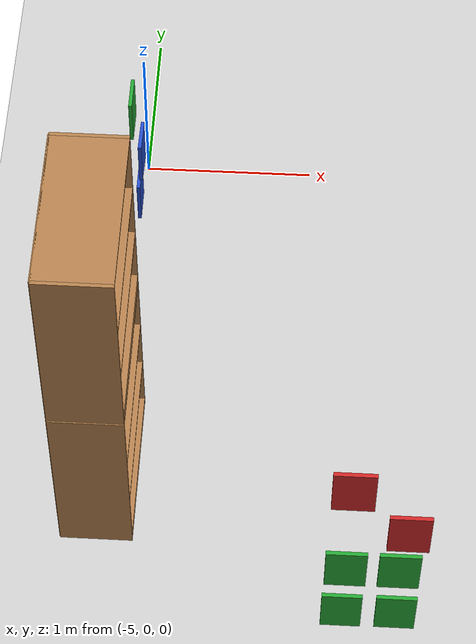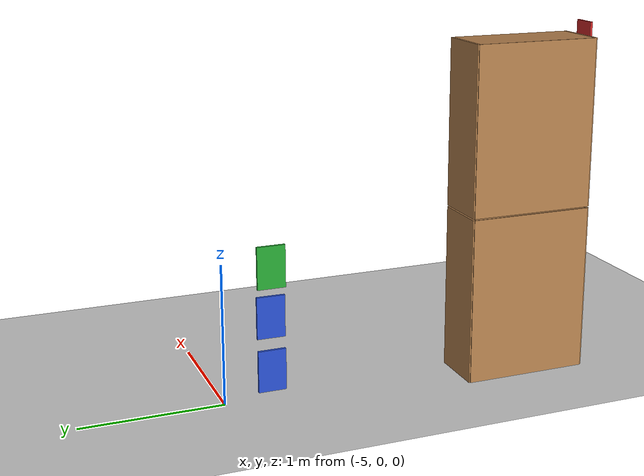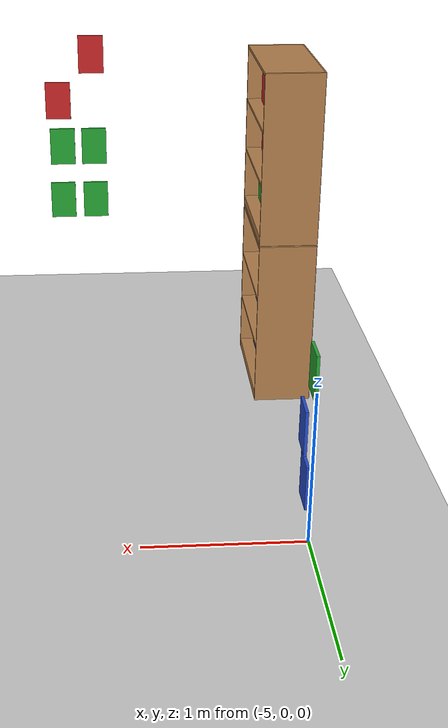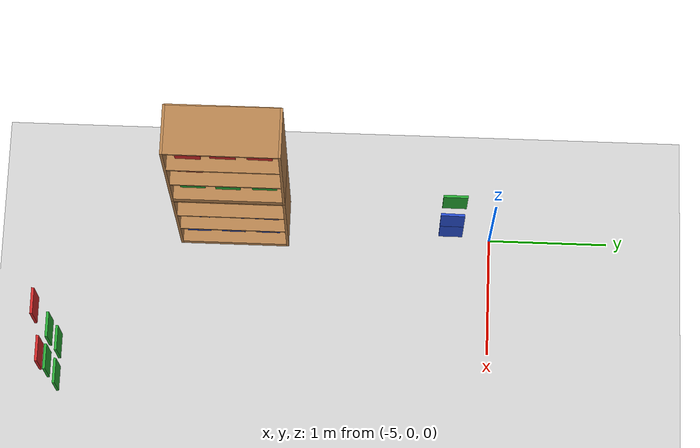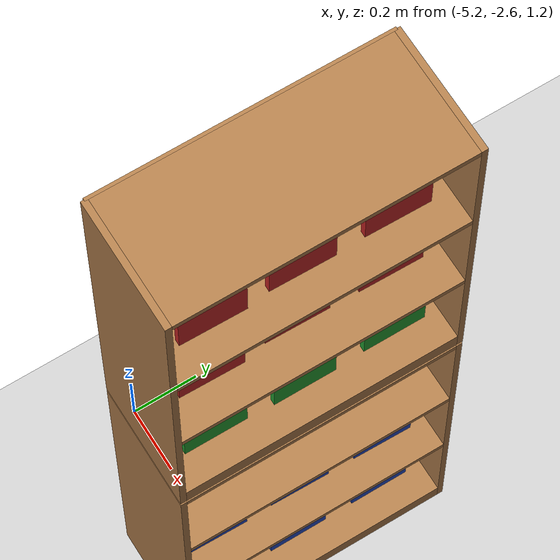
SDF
<sdf version="1.6">
 <world name="default">
  <model name="ground_plane">
   <static>1</static>
   <link name="link">
    <collision name="collision">
     <geometry><plane><normal>0 0 1</normal><size>100 100</size></plane></geometry>
     <surface><friction><ode><mu>100</mu><mu2>50</mu2></ode></friction></surface>
    </collision>
    <visual name="visual">
     <cast_shadows>0</cast_shadows>
     <geometry><plane><normal>0 0 1</normal><size>100 100</size></plane></geometry>
     <material>
      <script><uri>file://media/materials/scripts/gazebo.material</uri><name>Gazebo/Grey</name></script>
     </material>
    </visual>
   </link>
  </model>
  <model name="bookshelf_0_clone_0_clone_1">
   <static>1</static>
   <link name="link">
    <inertial><mass>1</mass></inertial>
    <collision name="back">
     <pose>0 0.005 0.6 0 -0 0</pose>
     <geometry><box><size>0.9 0.01 1.2</size></box></geometry>
    </collision>
    <visual name="visual1">
     <pose>0 0.005 0.6 0 -0 0</pose>
     <geometry><box><size>0.9 0.01 1.2</size></box></geometry>
     <material>
      <script><uri>file://media/materials/scripts/gazebo.material</uri><name>Gazebo/Wood</name></script>
     </material>
    </visual>
    <collision name="left_side">
     <pose>0.45 -0.195 0.6 0 -0 0</pose>
     <geometry><box><size>0.02 0.4 1.2</size></box></geometry>
    </collision>
    <visual name="visual2">
     <pose>0.45 -0.195 0.6 0 -0 0</pose>
     <geometry><box><size>0.02 0.4 1.2</size></box></geometry>
     <material>
      <script><uri>file://media/materials/scripts/gazebo.material</uri><name>Gazebo/Wood</name></script>
     </material>
    </visual>
    <collision name="right_side">
     <pose>-0.45 -0.195 0.6 0 -0 0</pose>
     <geometry><box><size>0.02 0.4 1.2</size></box></geometry>
    </collision>
    <visual name="visual3">
     <pose>-0.45 -0.195 0.6 0 -0 0</pose>
     <geometry><box><size>0.02 0.4 1.2</size></box></geometry>
     <material>
      <script><uri>file://media/materials/scripts/gazebo.material</uri><name>Gazebo/Wood</name></script>
     </material>
    </visual>
    <collision name="bottom">
     <pose>0 -0.195 0.03 0 -0 0</pose>
     <geometry><box><size>0.88 0.4 0.06</size></box></geometry>
    </collision>
    <visual name="visual4">
     <pose>0 -0.195 0.03 0 -0 0</pose>
     <geometry><box><size>0.88 0.4 0.06</size></box></geometry>
     <material>
      <script><uri>file://media/materials/scripts/gazebo.material</uri><name>Gazebo/Wood</name></script>
     </material>
    </visual>
    <collision name="top">
     <pose>0 -0.195 1.19 0 -0 0</pose>
     <geometry><box><size>0.88 0.4 0.02</size></box></geometry>
    </collision>
    <visual name="visual5">
     <pose>0 -0.195 1.19 0 -0 0</pose>
     <geometry><box><size>0.88 0.4 0.02</size></box></geometry>
     <material>
      <script><uri>file://media/materials/scripts/gazebo.material</uri><name>Gazebo/Wood</name></script>
     </material>
    </visual>
    <collision name="low_shelf">
     <pose>0 -0.195 0.43 0 -0 0</pose>
     <geometry><box><size>0.88 0.4 0.02</size></box></geometry>
    </collision>
    <visual name="visual6">
     <pose>0 -0.195 0.43 0 -0 0</pose>
     <geometry><box><size>0.88 0.4 0.02</size></box></geometry>
     <material>
      <script><uri>file://media/materials/scripts/gazebo.material</uri><name>Gazebo/Wood</name></script>
     </material>
    </visual>
    <collision name="high_shelf">
     <pose>0 -0.195 0.8 0 -0 0</pose>
     <geometry><box><size>0.88 0.4 0.02</size></box></geometry>
    </collision>
    <visual name="visual7">
     <pose>0 -0.195 0.8 0 -0 0</pose>
     <geometry><box><size>0.88 0.4 0.02</size></box></geometry>
     <material>
      <script><uri>file://media/materials/scripts/gazebo.material</uri><name>Gazebo/Wood</name></script>
     </material>
    </visual>
   </link>
   <pose>-5.28921 -2.17241 0 0 -0 1.5697</pose>
  </model>
  <model name="bookshelf_0_clone_0_clone_1_clone_0_clone_0">
   <static>1</static>
   <link name="link">
    <inertial><mass>1</mass></inertial>
    <collision name="back">
     <pose>0 0.005 0.6 0 -0 0</pose>
     <geometry><box><size>0.9 0.01 1.2</size></box></geometry>
    </collision>
    <visual name="visual1">
     <pose>0 0.005 0.6 0 -0 0</pose>
     <geometry><box><size>0.9 0.01 1.2</size></box></geometry>
     <material>
      <script><uri>file://media/materials/scripts/gazebo.material</uri><name>Gazebo/Wood</name></script>
     </material>
    </visual>
    <collision name="left_side">
     <pose>0.45 -0.195 0.6 0 -0 0</pose>
     <geometry><box><size>0.02 0.4 1.2</size></box></geometry>
    </collision>
    <visual name="visual2">
     <pose>0.45 -0.195 0.6 0 -0 0</pose>
     <geometry><box><size>0.02 0.4 1.2</size></box></geometry>
     <material>
      <script><uri>file://media/materials/scripts/gazebo.material</uri><name>Gazebo/Wood</name></script>
     </material>
    </visual>
    <collision name="right_side">
     <pose>-0.45 -0.195 0.6 0 -0 0</pose>
     <geometry><box><size>0.02 0.4 1.2</size></box></geometry>
    </collision>
    <visual name="visual3">
     <pose>-0.45 -0.195 0.6 0 -0 0</pose>
     <geometry><box><size>0.02 0.4 1.2</size></box></geometry>
     <material>
      <script><uri>file://media/materials/scripts/gazebo.material</uri><name>Gazebo/Wood</name></script>
     </material>
    </visual>
    <collision name="bottom">
     <pose>0 -0.195 0.03 0 -0 0</pose>
     <geometry><box><size>0.88 0.4 0.06</size></box></geometry>
    </collision>
    <visual name="visual4">
     <pose>0 -0.195 0.03 0 -0 0</pose>
     <geometry><box><size>0.88 0.4 0.06</size></box></geometry>
     <material>
      <script><uri>file://media/materials/scripts/gazebo.material</uri><name>Gazebo/Wood</name></script>
     </material>
    </visual>
    <collision name="top">
     <pose>0 -0.195 1.19 0 -0 0</pose>
     <geometry><box><size>0.88 0.4 0.02</size></box></geometry>
    </collision>
    <visual name="visual5">
     <pose>0 -0.195 1.19 0 -0 0</pose>
     <geometry><box><size>0.88 0.4 0.02</size></box></geometry>
     <material>
      <script><uri>file://media/materials/scripts/gazebo.material</uri><name>Gazebo/Wood</name></script>
     </material>
    </visual>
    <collision name="low_shelf">
     <pose>0 -0.195 0.43 0 -0 0</pose>
     <geometry><box><size>0.88 0.4 0.02</size></box></geometry>
    </collision>
    <visual name="visual6">
     <pose>0 -0.195 0.43 0 -0 0</pose>
     <geometry><box><size>0.88 0.4 0.02</size></box></geometry>
     <material>
      <script><uri>file://media/materials/scripts/gazebo.material</uri><name>Gazebo/Wood</name></script>
     </material>
    </visual>
    <collision name="high_shelf">
     <pose>0 -0.195 0.8 0 -0 0</pose>
     <geometry><box><size>0.88 0.4 0.02</size></box></geometry>
    </collision>
    <visual name="visual7">
     <pose>0 -0.195 0.8 0 -0 0</pose>
     <geometry><box><size>0.88 0.4 0.02</size></box></geometry>
     <material>
      <script><uri>file://media/materials/scripts/gazebo.material</uri><name>Gazebo/Wood</name></script>
     </material>
    </visual>
   </link>
   <pose>-5.28921 -2.17241 1.21067 0 -0 1.5697</pose>
  </model>
  <model name="bluecube_0_clone_clone_9_clone_11_clone_clone_9">
   <static>1</static>
   <link name="link">
    <pose>0 0 0.21 0 -0 0</pose>
    <collision name="collision"><geometry><box><size>0.2 0.02 0.3</size></box></geometry></collision>
    <visual name="visual">
     <geometry><box><size>0.2 0.02 0.3</size></box></geometry>
     <material>
      <script><uri>file://media/materials/scripts/gazebo.material</uri><name>Gazebo/Blue</name></script>
     </material>
    </visual>
   </link>
   <pose>-5.0005 -2.4781 0 0 -0 1.57146</pose>
  </model>
  <model name="bluecube_0_clone_clone_9_clone_11_clone_clone_10">
   <static>1</static>
   <link name="link">
    <pose>0 0 0.21 0 -0 0</pose>
    <collision name="collision"><geometry><box><size>0.2 0.02 0.3</size></box></geometry></collision>
    <visual name="visual">
     <geometry><box><size>0.2 0.02 0.3</size></box></geometry>
     <material>
      <script><uri>file://media/materials/scripts/gazebo.material</uri><name>Gazebo/Blue</name></script>
     </material>
    </visual>
   </link>
   <pose>-5.00143 -2.18751 0 0 -0 1.57146</pose>
  </model>
  <model name="bluecube_0_clone_clone_9_clone_11_clone_clone_11">
   <static>1</static>
   <link name="link">
    <pose>0 0 0.21 0 -0 0</pose>
    <collision name="collision"><geometry><box><size>0.2 0.02 0.3</size></box></geometry></collision>
    <visual name="visual">
     <geometry><box><size>0.2 0.02 0.3</size></box></geometry>
     <material>
      <script><uri>file://media/materials/scripts/gazebo.material</uri><name>Gazebo/Blue</name></script>
     </material>
    </visual>
   </link>
   <pose>-5.0024 -1.89029 0 0 -0 1.57146</pose>
  </model>
  <model name="bluecube_0_clone_clone_9_clone_11_clone_clone_12">
   <static>1</static>
   <link name="link">
    <pose>0 0 0.21 0 -0 0</pose>
    <collision name="collision"><geometry><box><size>0.2 0.02 0.3</size></box></geometry></collision>
    <visual name="visual">
     <geometry><box><size>0.2 0.02 0.3</size></box></geometry>
     <material>
      <script><uri>file://media/materials/scripts/gazebo.material</uri><name>Gazebo/Blue</name></script>
     </material>
    </visual>
   </link>
   <pose>-5.02173 -0.335053 0 0 -0 1.57146</pose>
  </model>
  <model name="bluecube_0_clone_clone_10_clone_clone_21_clone_clone_10">
   <static>1</static>
   <link name="link">
    <pose>0 0 0.21 0 -0 0</pose>
    <collision name="collision"><geometry><box><size>0.2 0.02 0.3</size></box></geometry></collision>
    <visual name="visual">
     <geometry><box><size>0.2 0.02 0.3</size></box></geometry>
     <material>
      <script><uri>file://media/materials/scripts/gazebo.material</uri><name>Gazebo/Blue</name></script>
     </material>
    </visual>
   </link>
   <pose>-5.00823 -2.46789 0.38097 0 -0 1.5507</pose>
  </model>
  <model name="bluecube_0_clone_clone_10_clone_clone_21_clone_clone_11">
   <static>1</static>
   <link name="link">
    <pose>0 0 0.21 0 -0 0</pose>
    <collision name="collision"><geometry><box><size>0.2 0.02 0.3</size></box></geometry></collision>
    <visual name="visual">
     <geometry><box><size>0.2 0.02 0.3</size></box></geometry>
     <material>
      <script><uri>file://media/materials/scripts/gazebo.material</uri><name>Gazebo/Blue</name></script>
     </material>
    </visual>
   </link>
   <pose>-5.00876 -2.17917 0.38097 0 -0 1.5507</pose>
  </model>
  <model name="bluecube_0_clone_clone_10_clone_clone_21_clone_clone_12">
   <static>1</static>
   <link name="link">
    <pose>0 0 0.21 0 -0 0</pose>
    <collision name="collision"><geometry><box><size>0.2 0.02 0.3</size></box></geometry></collision>
    <visual name="visual">
     <geometry><box><size>0.2 0.02 0.3</size></box></geometry>
     <material>
      <script><uri>file://media/materials/scripts/gazebo.material</uri><name>Gazebo/Blue</name></script>
     </material>
    </visual>
   </link>
   <pose>-5.00479 -1.88869 0.38097 0 -0 1.5507</pose>
  </model>
  <model name="bluecube_0_clone_clone_10_clone_clone_21_clone_clone_13">
   <static>1</static>
   <link name="link">
    <pose>0 0 0.21 0 -0 0</pose>
    <collision name="collision"><geometry><box><size>0.2 0.02 0.3</size></box></geometry></collision>
    <visual name="visual">
     <geometry><box><size>0.2 0.02 0.3</size></box></geometry>
     <material>
      <script><uri>file://media/materials/scripts/gazebo.material</uri><name>Gazebo/Blue</name></script>
     </material>
    </visual>
   </link>
   <pose>-4.99981 -0.338779 0.38097 0 -0 1.5507</pose>
  </model>
  <model name="greencube_clone_clone_20">
   <static>1</static>
   <link name="link">
    <pose>0 0 0.21 0 -0 0</pose>
    <collision name="collision"><geometry><box><size>0.2 0.02 0.3</size></box></geometry></collision>
    <visual name="visual">
     <geometry><box><size>0.2 0.02 0.3</size></box></geometry>
     <material>
      <script><uri>file://media/materials/scripts/gazebo.material</uri><name>Gazebo/Green</name></script>
     </material>
    </visual>
   </link>
   <pose>-3.48798 -3.49201 0.751098 0 -0 0</pose>
  </model>
  <model name="greencube_clone_clone_21">
   <static>1</static>
   <link name="link">
    <pose>0 0 0.21 0 -0 0</pose>
    <collision name="collision"><geometry><box><size>0.2 0.02 0.3</size></box></geometry></collision>
    <visual name="visual">
     <geometry><box><size>0.2 0.02 0.3</size></box></geometry>
     <material>
      <script><uri>file://media/materials/scripts/gazebo.material</uri><name>Gazebo/Green</name></script>
     </material>
    </visual>
   </link>
   <pose>-3.75667 -3.49433 0.751098 0 -0 0</pose>
  </model>
  <model name="greencube_clone_clone_22_clone_clone_10">
   <static>1</static>
   <link name="link">
    <pose>0 0 0.21 0 -0 0</pose>
    <collision name="collision"><geometry><box><size>0.2 0.02 0.3</size></box></geometry></collision>
    <visual name="visual">
     <geometry><box><size>0.2 0.02 0.3</size></box></geometry>
     <material>
      <script><uri>file://media/materials/scripts/gazebo.material</uri><name>Gazebo/Green</name></script>
     </material>
    </visual>
   </link>
   <pose>-5.02813 -2.46012 0.751098 0 -0 1.56837</pose>
  </model>
  <model name="greencube_clone_clone_22_clone_clone_11">
   <static>1</static>
   <link name="link">
    <pose>0 0 0.21 0 -0 0</pose>
    <collision name="collision"><geometry><box><size>0.2 0.02 0.3</size></box></geometry></collision>
    <visual name="visual">
     <geometry><box><size>0.2 0.02 0.3</size></box></geometry>
     <material>
      <script><uri>file://media/materials/scripts/gazebo.material</uri><name>Gazebo/Green</name></script>
     </material>
    </visual>
   </link>
   <pose>-5.03599 -2.17773 0.751098 0 -0 1.56837</pose>
  </model>
  <model name="greencube_clone_clone_22_clone_clone_12">
   <static>1</static>
   <link name="link">
    <pose>0 0 0.21 0 -0 0</pose>
    <collision name="collision"><geometry><box><size>0.2 0.02 0.3</size></box></geometry></collision>
    <visual name="visual">
     <geometry><box><size>0.2 0.02 0.3</size></box></geometry>
     <material>
      <script><uri>file://media/materials/scripts/gazebo.material</uri><name>Gazebo/Green</name></script>
     </material>
    </visual>
   </link>
   <pose>-5.03439 -1.88241 0.751098 0 -0 1.56837</pose>
  </model>
  <model name="greencube_clone_clone_22_clone_clone_13">
   <static>1</static>
   <link name="link">
    <pose>0 0 0.21 0 -0 0</pose>
    <collision name="collision"><geometry><box><size>0.2 0.02 0.3</size></box></geometry></collision>
    <visual name="visual">
     <geometry><box><size>0.2 0.02 0.3</size></box></geometry>
     <material>
      <script><uri>file://media/materials/scripts/gazebo.material</uri><name>Gazebo/Green</name></script>
     </material>
    </visual>
   </link>
   <pose>-5.04419 -0.332653 0.751098 0 -0 1.56837</pose>
  </model>
  <model name="greencube_clone_clone_0_clone_clone_clone_20">
   <static>1</static>
   <link name="link">
    <pose>0 0 0.21 0 -0 0</pose>
    <collision name="collision"><geometry><box><size>0.2 0.02 0.3</size></box></geometry></collision>
    <visual name="visual">
     <geometry><box><size>0.2 0.02 0.3</size></box></geometry>
     <material>
      <script><uri>file://media/materials/scripts/gazebo.material</uri><name>Gazebo/Green</name></script>
     </material>
    </visual>
   </link>
   <pose>-3.49563 -3.50923 1.20525 0 -0 0</pose>
  </model>
  <model name="greencube_clone_clone_0_clone_clone_clone_21">
   <static>1</static>
   <link name="link">
    <pose>0 0 0.21 0 -0 0</pose>
    <collision name="collision"><geometry><box><size>0.2 0.02 0.3</size></box></geometry></collision>
    <visual name="visual">
     <geometry><box><size>0.2 0.02 0.3</size></box></geometry>
     <material>
      <script><uri>file://media/materials/scripts/gazebo.material</uri><name>Gazebo/Green</name></script>
     </material>
    </visual>
   </link>
   <pose>-3.75223 -3.51006 1.20525 0 -0 0</pose>
  </model>
  <model name="greencube_clone_clone_22_clone_clone_10_clone_clone">
   <static>1</static>
   <link name="link">
    <pose>0 0 0.21 0 -0 0</pose>
    <collision name="collision"><geometry><box><size>0.2 0.02 0.3</size></box></geometry></collision>
    <visual name="visual">
     <geometry><box><size>0.2 0.02 0.3</size></box></geometry>
     <material>
      <script><uri>file://media/materials/scripts/gazebo.material</uri><name>Gazebo/Green</name></script>
     </material>
    </visual>
   </link>
   <pose>-4.99763 -2.17381 1.21098 0 -0 1.56837</pose>
  </model>
  <model name="greencube_clone_clone_22_clone_clone_10_clone_clone_clone">
   <static>1</static>
   <link name="link">
    <pose>0 0 0.21 0 -0 0</pose>
    <collision name="collision"><geometry><box><size>0.2 0.02 0.3</size></box></geometry></collision>
    <visual name="visual">
     <geometry><box><size>0.2 0.02 0.3</size></box></geometry>
     <material>
      <script><uri>file://media/materials/scripts/gazebo.material</uri><name>Gazebo/Green</name></script>
     </material>
    </visual>
   </link>
   <pose>-5.00313 -2.45708 1.21098 0 -0 1.56837</pose>
  </model>
  <model name="greencube_clone_clone_22_clone_clone_10_clone_clone_clone_0">
   <static>1</static>
   <link name="link">
    <pose>0 0 0.21 0 -0 0</pose>
    <collision name="collision"><geometry><box><size>0.2 0.02 0.3</size></box></geometry></collision>
    <visual name="visual">
     <geometry><box><size>0.2 0.02 0.3</size></box></geometry>
     <material>
      <script><uri>file://media/materials/scripts/gazebo.material</uri><name>Gazebo/Green</name></script>
     </material>
    </visual>
   </link>
   <pose>-5.00224 -1.87916 1.21098 0 -0 1.56837</pose>
  </model>
  <model name="redcube_clone_clone_20">
   <static>1</static>
   <link name="link">
    <pose>0 0 0.21 0 -0 0</pose>
    <collision name="collision"><geometry><box><size>0.2 0.02 0.3</size></box></geometry></collision>
    <visual name="visual">
     <geometry><box><size>0.2 0.02 0.3</size></box></geometry>
     <material>
      <script><uri>file://media/materials/scripts/gazebo.material</uri><name>Gazebo/Red</name></script>
     </material>
    </visual>
   </link>
   <pose>-3.47029 -3.52023 1.58534 0 -0 0</pose>
  </model>
  <model name="redcube_clone_clone_22_clone">
   <static>1</static>
   <link name="link">
    <pose>0 0 0.21 0 -0 0</pose>
    <collision name="collision"><geometry><box><size>0.2 0.02 0.3</size></box></geometry></collision>
    <visual name="visual">
     <geometry><box><size>0.2 0.02 0.3</size></box></geometry>
     <material>
      <script><uri>file://media/materials/scripts/gazebo.material</uri><name>Gazebo/Red</name></script>
     </material>
    </visual>
   </link>
   <pose>-5.02728 -2.18168 1.58534 0 -0 1.55372</pose>
  </model>
  <model name="redcube_clone_clone_22_clone_clone">
   <static>1</static>
   <link name="link">
    <pose>0 0 0.21 0 -0 0</pose>
    <collision name="collision"><geometry><box><size>0.2 0.02 0.3</size></box></geometry></collision>
    <visual name="visual">
     <geometry><box><size>0.2 0.02 0.3</size></box></geometry>
     <material>
      <script><uri>file://media/materials/scripts/gazebo.material</uri><name>Gazebo/Red</name></script>
     </material>
    </visual>
   </link>
   <pose>-5.01335 -2.45368 1.58534 0 -0 1.55372</pose>
  </model>
  <model name="redcube_clone_clone_22_clone_clone_0">
   <static>1</static>
   <link name="link">
    <pose>0 0 0.21 0 -0 0</pose>
    <collision name="collision"><geometry><box><size>0.2 0.02 0.3</size></box></geometry></collision>
    <visual name="visual">
     <geometry><box><size>0.2 0.02 0.3</size></box></geometry>
     <material>
      <script><uri>file://media/materials/scripts/gazebo.material</uri><name>Gazebo/Red</name></script>
     </material>
    </visual>
   </link>
   <pose>-5.02209 -1.89104 1.58534 0 -0 1.55372</pose>
  </model>
  <model name="redcube_clone_clone_22_clone_clone_22_clone_clone_10">
   <static>1</static>
   <link name="link">
    <pose>0 0 0.21 0 -0 0</pose>
    <collision name="collision"><geometry><box><size>0.2 0.02 0.3</size></box></geometry></collision>
    <visual name="visual">
     <geometry><box><size>0.2 0.02 0.3</size></box></geometry>
     <material>
      <script><uri>file://media/materials/scripts/gazebo.material</uri><name>Gazebo/Red</name></script>
     </material>
    </visual>
   </link>
   <pose>-5.00031 -2.44874 1.95914 0 -0 1.55372</pose>
  </model>
  <model name="redcube_clone_clone_22_clone_clone_22_clone_clone_11">
   <static>1</static>
   <link name="link">
    <pose>0 0 0.21 0 -0 0</pose>
    <collision name="collision"><geometry><box><size>0.2 0.02 0.3</size></box></geometry></collision>
    <visual name="visual">
     <geometry><box><size>0.2 0.02 0.3</size></box></geometry>
     <material>
      <script><uri>file://media/materials/scripts/gazebo.material</uri><name>Gazebo/Red</name></script>
     </material>
    </visual>
   </link>
   <pose>-5.00807 -2.17908 1.95914 0 -0 1.55372</pose>
  </model>
  <model name="redcube_clone_clone_22_clone_clone_22_clone_clone_12">
   <static>1</static>
   <link name="link">
    <pose>0 0 0.21 0 -0 0</pose>
    <collision name="collision"><geometry><box><size>0.2 0.02 0.3</size></box></geometry></collision>
    <visual name="visual">
     <geometry><box><size>0.2 0.02 0.3</size></box></geometry>
     <material>
      <script><uri>file://media/materials/scripts/gazebo.material</uri><name>Gazebo/Red</name></script>
     </material>
    </visual>
   </link>
   <pose>-5.00835 -1.89192 1.95914 0 -0 1.55372</pose>
  </model>
  <model name="redcube_clone_clone_clone_clone_clone_21">
   <static>1</static>
   <link name="link">
    <pose>0 0 0.21 0 -0 0</pose>
    <collision name="collision"><geometry><box><size>0.2 0.02 0.3</size></box></geometry></collision>
    <visual name="visual">
     <geometry><box><size>0.2 0.02 0.3</size></box></geometry>
     <material>
      <script><uri>file://media/materials/scripts/gazebo.material</uri><name>Gazebo/Red</name></script>
     </material>
    </visual>
   </link>
   <pose>-3.74451 -3.52575 1.95637 0 -0 0</pose>
  </model>
 </world>
</sdf>
